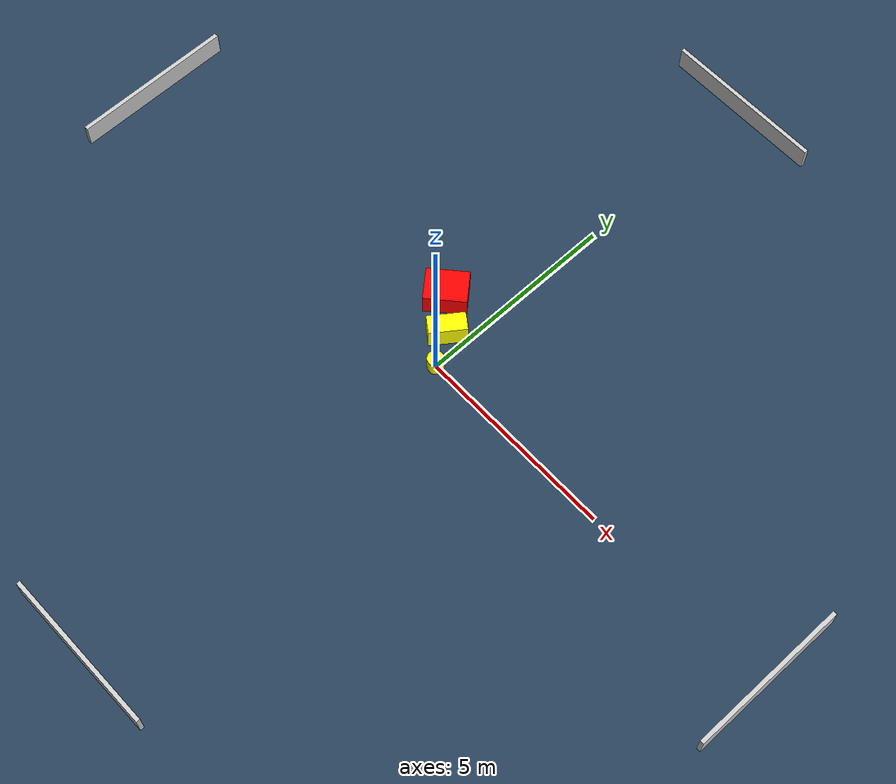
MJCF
<?xml version="1.0" ?>
<mujoco model="generated_environment">
  <option timestep="0.01" integrator="RK4" cone="elliptic"/>
  <default>
    <geom density="1"/>
  </default>
  <asset>
    <texture builtin="gradient" height="3072" name="skybox" rgb1="0.3 0.5 0.7" rgb2="0 0 0" type="skybox" width="512"/>
    <texture builtin="checker" height="300" name="groundplane" rgb1="0.2 0.3 0.4" rgb2="0.1 0.2 0.3" type="2d" width="300"/>
    <material name="groundplane" reflectance="0.2" texrepeat="5 5" texture="groundplane"/>
  </asset>
  <worldbody>
    <light dir="0 0 -1" directional="true" pos="0 0 1.5"/>
    <geom condim="3" friction="0.5 0.005 0.001" material="groundplane" name="floor" pos="0 0 0" size="0 0 0.05" type="plane"/>
    <body name="walls">
      <geom name="wall_1" condim="4" pos="-10.0 0.0 0.3" rgba="0.800000011920929 0.800000011920929 0.800000011920929 1.0" size="0.05 2.0 0.3" type="box"/>
      <geom name="wall_2" condim="4" pos="10.0 0.0 0.3" rgba="0.800000011920929 0.800000011920929 0.800000011920929 1.0" size="0.05 2.0 0.3" type="box"/>
      <geom name="wall_3" condim="4" pos="0.0 -10.0 0.3" rgba="0.800000011920929 0.800000011920929 0.800000011920929 1.0" size="2.0 0.05 0.3" type="box"/>
      <geom name="wall_4" condim="4" pos="0.0 10.0 0.3" rgba="0.800000011920929 0.800000011920929 0.800000011920929 1.0" size="2.0 0.05 0.3" type="box"/>
    </body>
    <body name="robot">
      <joint name="joint_x" type="slide" pos="0 0 0" axis="1 0 0"/>
      <joint name="joint_y" type="slide" pos="0 0 0" axis="0 1 0"/>
      <geom name="robot" type="cylinder" pos="0.0 0.0 0.2" size="0.2 0.2 0.0" mass="5.0" friction="1.0 0.005 0.0001" condim="4" rgba="1.0 1.0 0.0 1.0"/>
    </body>
    <body name="obstacle_1_movable">
      <geom name="obstacle_1_movable" condim="4" pos="-0.4119981916046609 0.7259367391613333 0.3" euler="0 0 234.1081453796226" friction="0.0 0.005 0.001" rgba="1.0 1.0 0.0 1.0" size="0.45208629178345344 0.22353210850567487 0.3" type="box" mass="0.1"/>
      <joint type="free"/>
    </body>
    <body name="obstacle_2_static">
      <geom name="obstacle_2_static" condim="4" pos="-1.123042051397082 1.3690653614589317 0.3" euler="0 0 131.26464462982455" friction="0.0 0.005 0.001" rgba="1.0 0.0 0.0 1.0" size="0.3946166141289504 0.5080413354949049 0.3" type="box"/>
    </body>
  </worldbody>
  <actuator>
    <motor name="actuator_x" joint="joint_x" gear="1" ctrlrange="-1 1"/>
    <motor name="actuator_y" joint="joint_y" gear="1" ctrlrange="-1 1"/>
  </actuator>
</mujoco>
